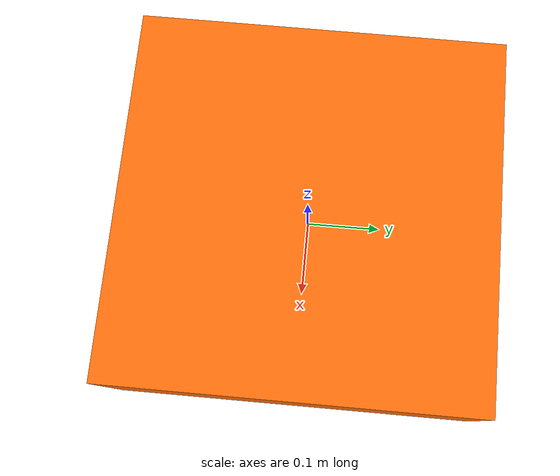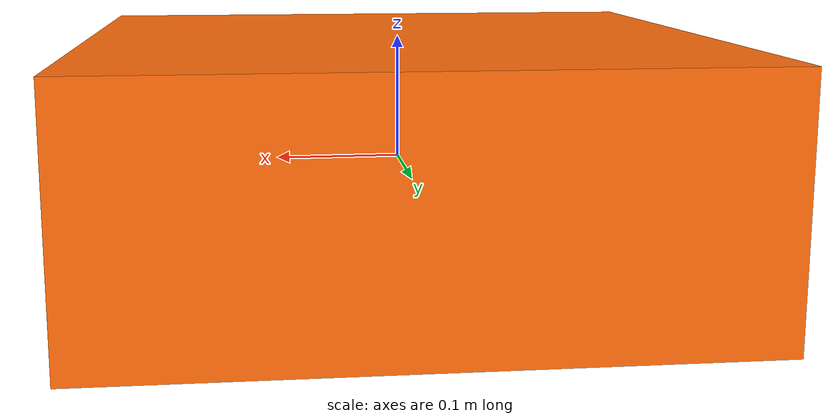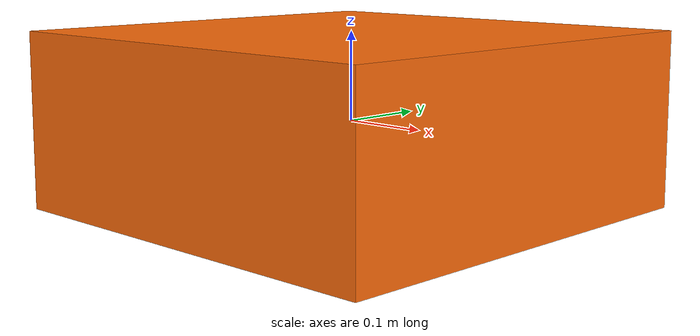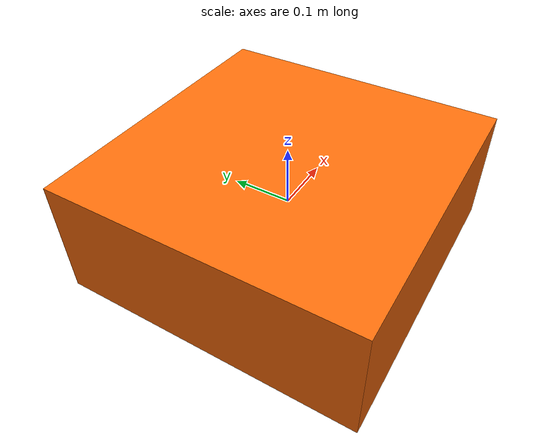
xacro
<?xml version="1.0"?>
<robot name="drone" xmlns:xacro="http://www.ros.org/wiki/xacro">

    <xacro:include filename="common_properties.xacro"/>
    <xacro:include filename="lidar_3d.xacro"/>
    <xacro:include filename="lidar_down.xacro"/>
    <xacro:include filename="gimbal.xacro"/>

    <!-- rough VTOL body envelope -->
    <xacro:property name="body_x" value="0.50"/>
    <xacro:property name="body_y" value="0.50"/>
    <xacro:property name="body_z" value="0.20"/>

    <link name="base_link">
        <visual>
            <geometry>
                <box size="${body_x} ${body_y} ${body_z}"/>
            </geometry>
            <origin xyz="0 0 0" rpy="0 0 0"/>
            <material name="orange"/>
        </visual>
        <collision>
            <geometry>
                <box size="${body_x} ${body_y} ${body_z}"/>
            </geometry>
            <origin xyz="0 0 0" rpy="0 0 0"/>
        </collision>
        <xacro:box_inertia m="1.5" x="${body_x}" y="${body_y}" z="${body_z}"
                           o_xyz="0 0 0" o_rpy="0 0 0"/>
    </link>

    <!-- 3D lidar mounted 0.26 m above base_link — identical to the PX4 model -->
    <joint name="lidar_3d_joint" type="fixed">
        <parent link="base_link"/>
        <child link="lidar_3d_link"/>
        <origin xyz="0 0 0.26" rpy="0 0 0"/>
    </joint>

    <!-- downward rangefinder 0.1 m below base_link, link pitched +90 deg so its
         +X points down (matches the PX4 model, so RViz shows the point below) -->
    <joint name="lidar_down_joint" type="fixed">
        <parent link="base_link"/>
        <child link="lidar_down_link"/>
        <origin xyz="0 0 -0.1" rpy="0 1.5708 0"/>
    </joint>

    <!-- PTZ gimbal (pan/roll/tilt) + camera: links & joints defined in
         gimbal.xacro, attached to base_link there. -->

</robot>

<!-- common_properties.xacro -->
<robot xmlns:xacro="http://www.ros.org/wiki/xacro">
    <material name="blue">
        <color rgba="0 0 0.5 1" />
    </material>

    <material name="grey">
        <color rgba="0.5 0.5 0.5 1" />
    </material>

    <material name="light_blue">
        <color rgba="0 0 0.2 1" />
    </material>

    <material name="orange">
        <color rgba="${255/255} ${108/255} ${10/255} 1.0" />
    </material>

    <material name="yellow">
        <color rgba="1 1 0 1" />
    </material>

    <xacro:macro name="box_inertia" params=" m x y z o_xyz o_rpy">
        <inertial>
            <mass value="${m}"/>
            <origin xyz="${o_xyz}" rpy="${o_rpy}" />
            <inertia ixx="${(m/12) * (y*y + z*z)}"  ixy="0" ixz="0"
                     iyy="${(m/12) * (x*x + z*z)}"  iyz="0"
                     izz="${(m/12) * (y*y + x*x)}"/>
        </inertial>
    </xacro:macro>

    <xacro:macro name="cylinder_inertia" params="m r length o_xyz o_rpy">
        <inertial>
            <mass value="${m}"/>
            <origin xyz="${o_xyz}" rpy="${o_rpy}"/>
            <inertia ixx="${(m/12) * (3*(r*r) + (length*length))}"  ixy="0" ixz="0"
                    iyy="${(m/12) * (3*(r*r) + (length*length))}"  iyz="0"
                    izz="${(1/2) * m * (r*r)}"/>
        </inertial>
    </xacro:macro>

    <xacro:macro name="sphere_inertia" params="m r  o_xyz o_rpy">
        <inertial>
            <mass value="${m}"/>
            <origin xyz="${o_xyz}" rpy="${o_rpy}"/>
            <inertia ixx="${(2/5) * m * (r*r)}" ixy="0" ixz="0"
                    iyy="${(2/5) * m * (r*r)}"  iyz="0"
                    izz="${(2/5) * m * (r*r)}"/>
        </inertial>
    </xacro:macro>

</robot>

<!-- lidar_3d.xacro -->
<robot xmlns:xacro="http://www.ros.org/wiki/xacro">

    <link name="lidar_3d_link">
        <xacro:cylinder_inertia m="0.0001" r="0.03" length="0.04"
                                o_xyz="0 0 0" o_rpy="0 0 0"/>
    </link>

</robot>

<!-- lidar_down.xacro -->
<robot xmlns:xacro="http://www.ros.org/wiki/xacro">

    <link name="lidar_down_link">
        <xacro:cylinder_inertia m="0.0001" r="0.02" length="0.02"
                                o_xyz="0 0 0" o_rpy="0 0 0"/>
    </link>

</robot>

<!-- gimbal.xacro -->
<robot xmlns:xacro="http://www.ros.org/wiki/xacro">

    <link name="gimbal_pan_link">
        <xacro:cylinder_inertia m="0.05" r="0.02" length="0.02"
                                o_xyz="0 0 0" o_rpy="0 0 0"/>
    </link>

    <joint name="gimbal_pan_joint" type="revolute">
        <parent link="base_link"/>
        <child link="gimbal_pan_link"/>
        <origin xyz="0 0 -0.18" rpy="0 0 0"/>
        <axis xyz="0 0 1"/>
        <limit lower="-3.14159" upper="3.14159" effort="10" velocity="3"/>
    </joint>

    <link name="gimbal_roll_link">
        <xacro:cylinder_inertia m="0.05" r="0.02" length="0.02"
                                o_xyz="0 0 0" o_rpy="0 0 0"/>
    </link>

    <joint name="gimbal_roll_joint" type="revolute">
        <parent link="gimbal_pan_link"/>
        <child link="gimbal_roll_link"/>
        <origin xyz="0 0 0" rpy="0 0 0"/>
        <axis xyz="1 0 0"/>
        <limit lower="-0.785" upper="0.785" effort="10" velocity="3"/>
    </joint>

    <link name="gimbal_pitch_link">
        <xacro:cylinder_inertia m="0.05" r="0.02" length="0.02"
                                o_xyz="0 0 0" o_rpy="0 0 0"/>
    </link>

    <joint name="gimbal_pitch_joint" type="revolute">
        <parent link="gimbal_roll_link"/>
        <child link="gimbal_pitch_link"/>
        <origin xyz="0 0 0" rpy="0 0 0"/>
        <axis xyz="0 1 0"/>
        <limit lower="-1.5708" upper="1.5708" effort="10" velocity="3"/>
    </joint>

</robot>
